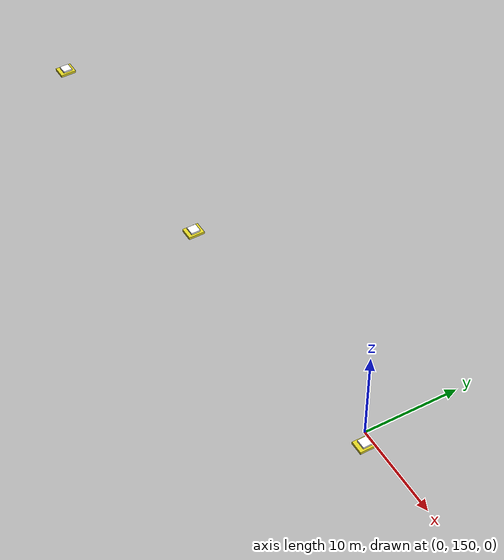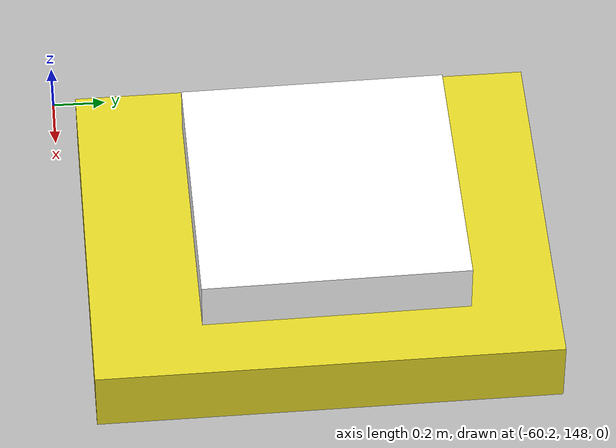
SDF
<sdf version="1.7">
 <world name="default">
  <light name="sun" type="directional">
   <pose>0 0 50 0 -0 0</pose>
   <diffuse>1 1 1 1</diffuse>
   <specular>0.4 0.4 0.4 1</specular>
   <attenuation>
    <range>1000</range>
    <constant>0.9</constant>
    <linear>0.01</linear>
    <quadratic>0.001</quadratic>
   </attenuation>
   <direction>-0.5 0.1 -0.9</direction>
   <spot><inner_angle>0</inner_angle><outer_angle>0</outer_angle><falloff>0</falloff></spot>
  </light>
  <physics name="default_physics" default="0" type="ode">
   <ode>
    <solver>
     <type>quick</type>
     <iters>10</iters>
     <sor>1.3</sor>
     <use_dynamic_moi_rescaling>0</use_dynamic_moi_rescaling>
    </solver>
    <constraints>
     <cfm>0</cfm>
     <erp>0.2</erp>
     <contact_max_correcting_vel>100</contact_max_correcting_vel>
     <contact_surface_layer>0.001</contact_surface_layer>
    </constraints>
   </ode>
   <max_step_size>0.004</max_step_size>
   <real_time_factor>1</real_time_factor>
   <real_time_update_rate>250</real_time_update_rate>
  </physics>
  <gravity>0 0 -9.8066</gravity>
  <magnetic_field>6e-06 2.3e-05 -4.2e-05</magnetic_field>
  <atmosphere type="adiabatic"/>
  <scene><ambient>0.4 0.4 0.4 1</ambient><background>0.7 0.7 0.7 1</background><shadows>1</shadows></scene>
  <spherical_coordinates>
   <latitude_deg>26.9869</latitude_deg>
   <longitude_deg>80.893</longitude_deg>
   <elevation>488</elevation>
   <heading_deg>0</heading_deg>
   <surface_model>EARTH_WGS84</surface_model>
  </spherical_coordinates>
  <model name="aruco_marker1">
   <static>1</static>
   <link name="marker">
    <visual name="visual">
     <geometry><box><size>1 0.2 1</size></box></geometry>
     <material>
      <script>
       <uri>model://aruco_marker1/materials/scripts</uri>
       <uri>model://aruco_marker1/materials/textures</uri>
       <name>arucomarker1/Marker</name>
      </script>
      <ambient>1 1 1 1</ambient>
      <diffuse>1 1 1 1</diffuse>
      <specular>0 0 0 1</specular>
      <emissive>1 1 1 0</emissive>
      <shader type="vertex"><normal_map>__default__</normal_map></shader>
     </material>
    </visual>
    <collision name="collision">
     <geometry><box><size>1 0.2 1</size></box></geometry>
     <surface><friction><ode><mu>1</mu></ode></friction></surface>
    </collision>
    <inertial>
     <inertia><ixx>1</ixx><ixy>0</ixy><ixz>0</ixz><iyy>1</iyy><iyz>0</iyz><izz>1</izz></inertia>
     <mass>6</mass>
    </inertial>
   </link>
   <pose>-59.4312 148.995 0.223172 1.57098 0.000174 -3.12891</pose>
  </model>
  <model name="aruco_marker2">
   <static>1</static>
   <link name="marker">
    <visual name="visual">
     <geometry><box><size>1 0.2 1</size></box></geometry>
     <material>
      <script>
       <uri>model://aruco_marker2/materials/scripts</uri>
       <uri>model://aruco_marker2/materials/textures</uri>
       <name>arucomarker2/Marker</name>
      </script>
      <ambient>1 1 1 1</ambient>
      <diffuse>1 1 1 1</diffuse>
      <specular>0 0 0 1</specular>
      <emissive>1 1 1 0</emissive>
      <shader type="vertex"><normal_map>__default__</normal_map></shader>
     </material>
    </visual>
    <collision name="collision">
     <geometry><box><size>1 0.2 1</size></box></geometry>
     <surface><friction><ode><mu>1</mu></ode></friction></surface>
    </collision>
    <inertial>
     <inertia><ixx>1</ixx><ixy>0</ixy><ixz>0</ixz><iyy>1</iyy><iyz>0</iyz><izz>1</izz></inertia>
     <mass>6</mass>
    </inertial>
   </link>
   <pose>-30.0784 148.946 0.399599 1.57105 6.8e-05 -3.13488</pose>
  </model>
  <model name="aruco_marker3">
   <static>1</static>
   <link name="marker">
    <visual name="visual">
     <geometry><box><size>1 0.2 1</size></box></geometry>
     <material>
      <script>
       <uri>model://aruco_marker3/materials/scripts</uri>
       <uri>model://aruco_marker3/materials/textures</uri>
       <name>arucomarker3/Marker</name>
      </script>
      <ambient>1 1 1 1</ambient>
      <diffuse>1 1 1 1</diffuse>
      <specular>0 0 0 1</specular>
      <emissive>1 1 1 0</emissive>
      <shader type="vertex"><normal_map>__default__</normal_map></shader>
     </material>
    </visual>
    <collision name="collision">
     <geometry><box><size>1 0.2 1</size></box></geometry>
     <surface><friction><ode><mu>1</mu></ode></friction></surface>
    </collision>
    <inertial>
     <inertia><ixx>1</ixx><ixy>0</ixy><ixz>0</ixz><iyy>1</iyy><iyz>0</iyz><izz>1</izz></inertia>
     <mass>6</mass>
    </inertial>
   </link>
   <pose>1.14945 149.237 0.273405 1.57086 -1.1e-05 -3.1305</pose>
  </model>
  <model name="dock1">
   <static>1</static>
   <pose>-59.43 148.958 -0.03246 -4.3e-05 4e-05 0.005312</pose>
   <link name="link">
    <inertial>
     <mass>12</mass>
     <inertia>
      <ixx>0.166667</ixx>
      <ixy>0</ixy>
      <ixz>0</ixz>
      <iyy>0.166667</iyy>
      <iyz>0</iyz>
      <izz>0.166667</izz>
     </inertia>
    </inertial>
    <collision name="collision"><geometry><box><size>1.42094 1.7371 0.256668</size></box></geometry></collision>
    <visual name="visual">
     <geometry><box><size>1.42094 1.7371 0.256668</size></box></geometry>
     <material>
      <script><name>Gazebo/Yellow</name><uri>file://media/materials/scripts/gazebo.material</uri></script>
     </material>
    </visual>
   </link>
  </model>
  <model name="dock2">
   <static>1</static>
   <pose>1.14085 149.182 0.021637 -8.6e-05 7.4e-05 0.00341</pose>
   <link name="link">
    <inertial>
     <mass>12</mass>
     <inertia>
      <ixx>0.166667</ixx>
      <ixy>0</ixy>
      <ixz>0</ixz>
      <iyy>0.166667</iyy>
      <iyz>0</iyz>
      <izz>0.166667</izz>
     </inertia>
    </inertial>
    <collision name="collision"><geometry><box><size>1.42094 1.73711 0.256668</size></box></geometry></collision>
    <visual name="visual">
     <geometry><box><size>1.42094 1.73711 0.256668</size></box></geometry>
     <material>
      <script><name>Gazebo/Yellow</name><uri>file://media/materials/scripts/gazebo.material</uri></script>
     </material>
    </visual>
   </link>
  </model>
  <model name="dock3">
   <static>1</static>
   <pose>-30.0891 148.932 0.12638 -5.7e-05 3.7e-05 0.007094</pose>
   <link name="link">
    <inertial>
     <mass>12</mass>
     <inertia>
      <ixx>0.166667</ixx>
      <ixy>0</ixy>
      <ixz>0</ixz>
      <iyy>0.166667</iyy>
      <iyz>0</iyz>
      <izz>0.166667</izz>
     </inertia>
    </inertial>
    <collision name="collision"><geometry><box><size>1.42094 1.73711 0.256668</size></box></geometry></collision>
    <visual name="visual">
     <geometry><box><size>1.42094 1.73711 0.256668</size></box></geometry>
     <material>
      <script><name>Gazebo/Yellow</name><uri>file://media/materials/scripts/gazebo.material</uri></script>
     </material>
    </visual>
   </link>
  </model>
 </world>
</sdf>
